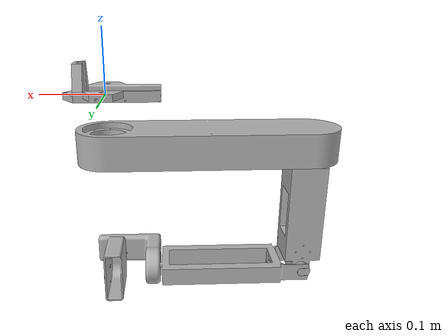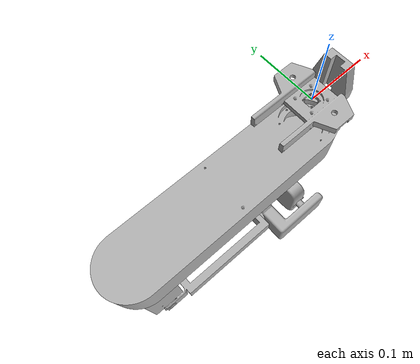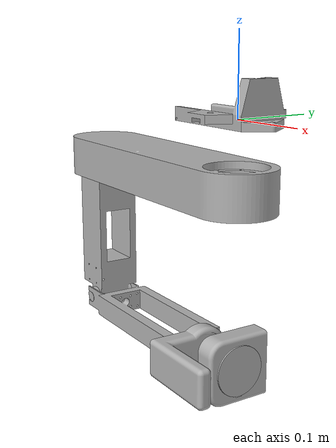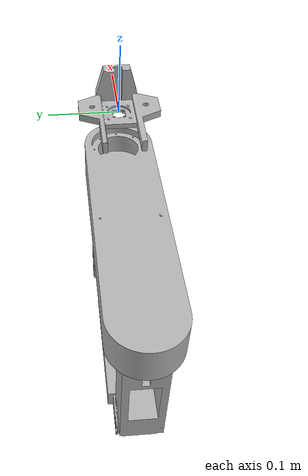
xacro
<?xml version="1.0" ?>
<robot name="surg_bot" xmlns:xacro="http://www.ros.org/wiki/xacro">

<xacro:include filename="$(find surg_bot_description)/urdf/materials.xacro" />
<xacro:include filename="$(find surg_bot_description)/urdf/surg_bot.trans" />
<xacro:include filename="$(find surg_bot_description)/urdf/surg_bot.gazebo" />
<link name="base_link">
  <inertial>
    <origin xyz="-4.031295976229773e-05 2.551630137478745e-06 -0.02955399218078996" rpy="0 0 0"/>
    <mass value="0.4069489619511855"/>
    <inertia ixx="0.000314" iyy="0.000315" izz="0.000167" ixy="-0.0" iyz="0.0" ixz="0.0"/>
  </inertial>
  <visual>
    <origin xyz="0 0 0" rpy="0 0 0"/>
    <geometry>
      <mesh filename="file://$(find surg_bot_description)/meshes/base_link.stl" scale="0.001 0.001 0.001"/>
    </geometry>
    <material name="silver"/>
  </visual>
  <collision>
    <origin xyz="0 0 0" rpy="0 0 0"/>
    <geometry>
      <mesh filename="file://$(find surg_bot_description)/meshes/base_link.stl" scale="0.001 0.001 0.001"/>
    </geometry>
  </collision>
</link>

<link name="link1_1_1">
  <inertial>
    <origin xyz="-0.16001007717101143 -1.5433885540422345e-05 -0.01760775000004948" rpy="0 0 0"/>
    <mass value="8.367890341080868"/>
    <inertia ixx="0.012225" iyy="0.118361" izz="0.124365" ixy="0.0" iyz="0.0" ixz="0.001924"/>
  </inertial>
  <visual>
    <origin xyz="1e-05 -1e-05 0.063784" rpy="0 0 0"/>
    <geometry>
      <mesh filename="file://$(find surg_bot_description)/meshes/link1_1_1.stl" scale="0.001 0.001 0.001"/>
    </geometry>
    <material name="silver"/>
  </visual>
  <collision>
    <origin xyz="1e-05 -1e-05 0.063784" rpy="0 0 0"/>
    <geometry>
      <mesh filename="file://$(find surg_bot_description)/meshes/link1_1_1.stl" scale="0.001 0.001 0.001"/>
    </geometry>
  </collision>
</link>

<link name="link2_1_1">
  <inertial>
    <origin xyz="0.000222277820202621 2.4740641813817415e-05 -0.11737411773568346" rpy="0 0 0"/>
    <mass value="3.3490679501648595"/>
    <inertia ixx="0.014417" iyy="0.014057" izz="0.002264" ixy="-1e-06" iyz="8e-06" ixz="-5.7e-05"/>
  </inertial>
  <visual>
    <origin xyz="0.32003 -1e-05 0.099" rpy="0 0 0"/>
    <geometry>
      <mesh filename="file://$(find surg_bot_description)/meshes/link2_1_1.stl" scale="0.001 0.001 0.001"/>
    </geometry>
    <material name="silver"/>
  </visual>
  <collision>
    <origin xyz="0.32003 -1e-05 0.099" rpy="0 0 0"/>
    <geometry>
      <mesh filename="file://$(find surg_bot_description)/meshes/link2_1_1.stl" scale="0.001 0.001 0.001"/>
    </geometry>
  </collision>
</link>

<link name="link3_1">
  <inertial>
    <origin xyz="0.1354592267935596 0.030192910648437193 0.00044866468104021173" rpy="0 0 0"/>
    <mass value="1.7602626049739658"/>
    <inertia ixx="0.001766" iyy="0.008244" izz="0.009744" ixy="2.4e-05" iyz="0.0" ixz="-2.6e-05"/>
  </inertial>
  <visual>
    <origin xyz="0.320135 0.0306 0.303283" rpy="0 0 0"/>
    <geometry>
      <mesh filename="file://$(find surg_bot_description)/meshes/link3_1.stl" scale="0.001 0.001 0.001"/>
    </geometry>
    <material name="silver"/>
  </visual>
  <collision>
    <origin xyz="0.320135 0.0306 0.303283" rpy="0 0 0"/>
    <geometry>
      <mesh filename="file://$(find surg_bot_description)/meshes/link3_1.stl" scale="0.001 0.001 0.001"/>
    </geometry>
  </collision>
</link>

<link name="link4_1">
  <inertial>
    <origin xyz="0.026057732789940877 -0.04507242698022944 8.680052417670003e-05" rpy="0 0 0"/>
    <mass value="1.4039319321687402"/>
    <inertia ixx="0.001418" iyy="0.001888" izz="0.002652" ixy="0.000674" iyz="2e-06" ixz="-4e-06"/>
  </inertial>
  <visual>
    <origin xyz="0.065319 0.000859 0.302438" rpy="0 0 0"/>
    <geometry>
      <mesh filename="file://$(find surg_bot_description)/meshes/link4_1.stl" scale="0.001 0.001 0.001"/>
    </geometry>
    <material name="silver"/>
  </visual>
  <collision>
    <origin xyz="0.065319 0.000859 0.302438" rpy="0 0 0"/>
    <geometry>
      <mesh filename="file://$(find surg_bot_description)/meshes/link4_1.stl" scale="0.001 0.001 0.001"/>
    </geometry>
  </collision>
</link>

<link name="fake_link_1">
  <inertial>
    <origin xyz="-0.0025000443408709893 8.946959404469842e-06 -8.268459717741816e-06" rpy="0 0 0"/>
    <mass value="0.001098697673021953"/>
    <inertia ixx="0.0" iyy="0.0" izz="0.0" ixy="-0.0" iyz="-0.0" ixz="0.0"/>
  </inertial>
  <visual>
    <origin xyz="-0.014679 0.00143 0.302173" rpy="0 0 0"/>
    <geometry>
      <mesh filename="file://$(find surg_bot_description)/meshes/fake_link_1.stl" scale="0.001 0.001 0.001"/>
    </geometry>
    <material name="silver"/>
  </visual>
  <collision>
    <origin xyz="-0.014679 0.00143 0.302173" rpy="0 0 0"/>
    <geometry>
      <mesh filename="file://$(find surg_bot_description)/meshes/fake_link_1.stl" scale="0.001 0.001 0.001"/>
    </geometry>
  </collision>
</link>

<link name="AprilTag0_1"/>

<link name="base_connector_1">
  <inertial>
    <origin xyz="0.008739591761476772 -0.009261123091376765 0.013879262591046193" rpy="0 0 0"/>
    <mass value="0.8045670076781538"/>
    <inertia ixx="0.000675" iyy="0.001052" izz="0.001469" ixy="-1e-06" iyz="-0.0" ixz="-0.000124"/>
  </inertial>
  <visual>
    <origin xyz="0.0 -0.0094 0.007" rpy="0 0 0"/>
    <geometry>
      <mesh filename="file://$(find surg_bot_description)/meshes/base_connector_1.stl" scale="0.001 0.001 0.001"/>
    </geometry>
    <material name="silver"/>
  </visual>
  <collision>
    <origin xyz="0.0 -0.0094 0.007" rpy="0 0 0"/>
    <geometry>
      <mesh filename="file://$(find surg_bot_description)/meshes/base_connector_1.stl" scale="0.001 0.001 0.001"/>
    </geometry>
  </collision>
</link>

<link name="AprilTag1_1"/>

<link name="link5_1_1">
  <inertial>
    <origin xyz="-0.00044160365250938067 0.03911603505931648 3.168698741190523e-05" rpy="0 0 0"/>
    <mass value="0.38469776659589416"/>
    <inertia ixx="0.00055" iyy="0.000348" izz="0.000309" ixy="-0.0" iyz="-0.0" ixz="1e-06"/>
  </inertial>
  <visual>
    <origin xyz="0.000228 0.042975 0.302222" rpy="0 0 0"/>
    <geometry>
      <mesh filename="file://$(find surg_bot_description)/meshes/link5_1_1.stl" scale="0.001 0.001 0.001"/>
    </geometry>
    <material name="silver"/>
  </visual>
  <collision>
    <origin xyz="0.000228 0.042975 0.302222" rpy="0 0 0"/>
    <geometry>
      <mesh filename="file://$(find surg_bot_description)/meshes/link5_1_1.stl" scale="0.001 0.001 0.001"/>
    </geometry>
  </collision>
</link>

<link name="end_effector_1">
  <inertial>
    <origin xyz="0.0009999117915723155 -4.233375403692912e-06 3.279256363175609e-06" rpy="0 0 0"/>
    <mass value="0.05209742367356123"/>
    <inertia ixx="2.8e-05" iyy="1.4e-05" izz="1.4e-05" ixy="-0.0" iyz="-0.0" ixz="0.0"/>
  </inertial>
  <visual>
    <origin xyz="-0.014679 0.00143 0.302173" rpy="0 0 0"/>
    <geometry>
      <mesh filename="file://$(find surg_bot_description)/meshes/end_effector_1.stl" scale="0.001 0.001 0.001"/>
    </geometry>
    <material name="silver"/>
  </visual>
  <collision>
    <origin xyz="-0.014679 0.00143 0.302173" rpy="0 0 0"/>
    <geometry>
      <mesh filename="file://$(find surg_bot_description)/meshes/end_effector_1.stl" scale="0.001 0.001 0.001"/>
    </geometry>
  </collision>
</link>

<joint name="joint0" type="revolute">
  <origin xyz="-1e-05 1e-05 -0.063784" rpy="0 0 0"/>
  <parent link="base_link"/>
  <child link="link1_1_1"/>
  <axis xyz="0.0 0.0 1.0"/>
  <limit upper="3.141593" lower="-3.141593" effort="100" velocity="100"/>
</joint>

<joint name="joint1" type="revolute">
  <origin xyz="-0.32002 0.0 -0.035216" rpy="0 0 0"/>
  <parent link="link1_1_1"/>
  <child link="link2_1_1"/>
  <axis xyz="0.0 0.0 1.0"/>
  <limit upper="3.141593" lower="-3.141593" effort="100" velocity="100"/>
</joint>

<joint name="joint2" type="revolute">
  <origin xyz="-0.000105 -0.03061 -0.204283" rpy="0 0 0"/>
  <parent link="link2_1_1"/>
  <child link="link3_1"/>
  <axis xyz="-0.003766 -0.999993 0.0"/>
  <limit upper="0.174533" lower="-1.570796" effort="100" velocity="100"/>
</joint>

<joint name="joint3" type="revolute">
  <origin xyz="0.254816 0.029741 0.000845" rpy="0 0 0"/>
  <parent link="link3_1"/>
  <child link="link4_1"/>
  <axis xyz="0.999987 -0.003766 0.003319"/>
  <limit upper="2.268928" lower="-2.268928" effort="100" velocity="100"/>
</joint>

<joint name="joint5" type="revolute">
  <origin xyz="0.014907 0.041545 4.9e-05" rpy="0 0 0"/>
  <parent link="link5_1_1"/>
  <child link="fake_link_1"/>
  <axis xyz="0.999987 -0.003766 0.003299"/>
  <limit upper="3.141593" lower="-3.141593" effort="100" velocity="100"/>
</joint>

<joint name="rigid1" type="fixed">
  <origin xyz="0.0 0.0094 -0.007" rpy="0 0 0"/>
  <parent link="base_link"/>
  <child link="base_connector_1"/>
</joint>

<joint name="tag0" type="fixed">
  <origin xyz="-0.0572 -0.041877 0.0275" rpy="1.5708 0 0"/>
  <parent link="base_connector_1"/>
  <child link="AprilTag0_1"/>
</joint>

<joint name="tag1" type="fixed">
  <origin xyz="-0.0572 0.023523 0.0275" rpy="-1.5708 -3.1416 0"/>
  <parent link="base_connector_1"/>
  <child link="AprilTag1_1"/>
</joint>

<joint name="joint4" type="revolute">
  <origin xyz="0.065091 -0.042116 0.000216" rpy="0 0 0"/>
  <parent link="link4_1"/>
  <child link="link5_1_1"/>
  <axis xyz="0.003766 0.999993 -0.0"/>
  <limit upper="2.268928" lower="-2.268928" effort="100" velocity="100"/>
</joint>

<joint name="slider" type="prismatic">
  <origin xyz="0.0 0.0 0.0" rpy="0 0 0"/>
  <parent link="fake_link_1"/>
  <child link="end_effector_1"/>
  <axis xyz="0.999987 -0.003766 0.003299"/>
  <limit upper="3.0" lower="0.0" effort="100" velocity="100"/>
</joint>

</robot>

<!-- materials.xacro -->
<robot name="surg_bot" xmlns:xacro="http://www.ros.org/wiki/xacro" >

<material name="silver">
  <color rgba="0.700 0.700 0.700 1.000"/>
</material>

</robot>

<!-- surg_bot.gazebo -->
<robot name="surg_bot" xmlns:xacro="http://www.ros.org/wiki/xacro" >

<xacro:property name="body_color" value="Gazebo/Silver" />

<gazebo>
  <plugin name="control" filename="libgazebo_ros_control.so"/>
</gazebo>
<gazebo reference="base_link">
  <material>${body_color}</material>
  <mu1>0.2</mu1>
  <mu2>0.2</mu2>
  <self_collide>true</self_collide>
  <gravity>true</gravity>
</gazebo>

<gazebo reference="link1_1_1">
  <material>${body_color}</material>
  <mu1>0.2</mu1>
  <mu2>0.2</mu2>
  <self_collide>true</self_collide>
</gazebo>

<gazebo reference="link2_1_1">
  <material>${body_color}</material>
  <mu1>0.2</mu1>
  <mu2>0.2</mu2>
  <self_collide>true</self_collide>
</gazebo>

<gazebo reference="link3_1">
  <material>${body_color}</material>
  <mu1>0.2</mu1>
  <mu2>0.2</mu2>
  <self_collide>true</self_collide>
</gazebo>

<gazebo reference="link4_1">
  <material>${body_color}</material>
  <mu1>0.2</mu1>
  <mu2>0.2</mu2>
  <self_collide>true</self_collide>
</gazebo>

<gazebo reference="fake_link_1">
  <material>${body_color}</material>
  <mu1>0.2</mu1>
  <mu2>0.2</mu2>
  <self_collide>true</self_collide>
</gazebo>

<gazebo reference="AprilTag0_1">
  <material>${body_color}</material>
  <mu1>0.2</mu1>
  <mu2>0.2</mu2>
  <self_collide>true</self_collide>
</gazebo>

<gazebo reference="base_connector_1">
  <material>${body_color}</material>
  <mu1>0.2</mu1>
  <mu2>0.2</mu2>
  <self_collide>true</self_collide>
</gazebo>

<gazebo reference="AprilTag1_1">
  <material>${body_color}</material>
  <mu1>0.2</mu1>
  <mu2>0.2</mu2>
  <self_collide>true</self_collide>
</gazebo>

<gazebo reference="link5_1_1">
  <material>${body_color}</material>
  <mu1>0.2</mu1>
  <mu2>0.2</mu2>
  <self_collide>true</self_collide>
</gazebo>

<gazebo reference="end_effector_1">
  <material>${body_color}</material>
  <mu1>0.2</mu1>
  <mu2>0.2</mu2>
  <self_collide>true</self_collide>
</gazebo>

</robot>
